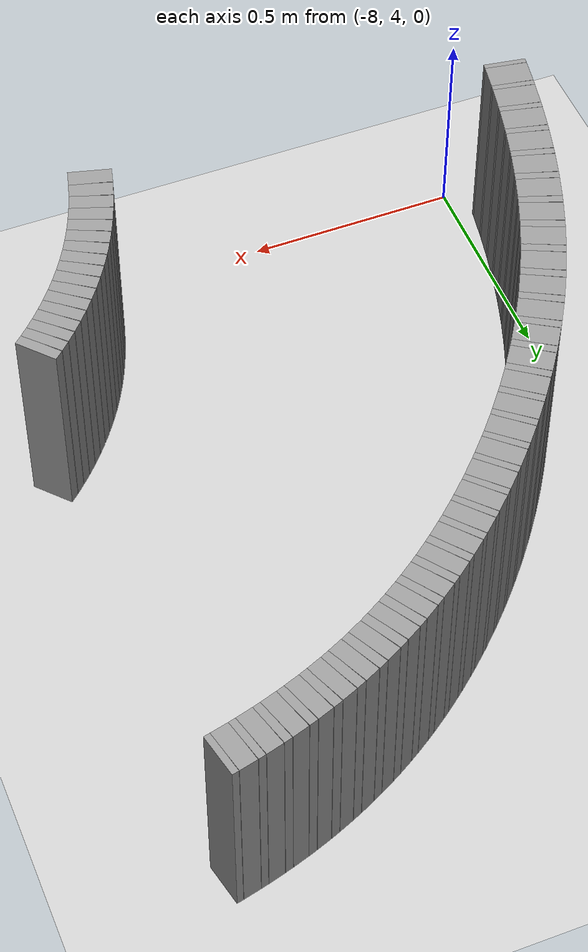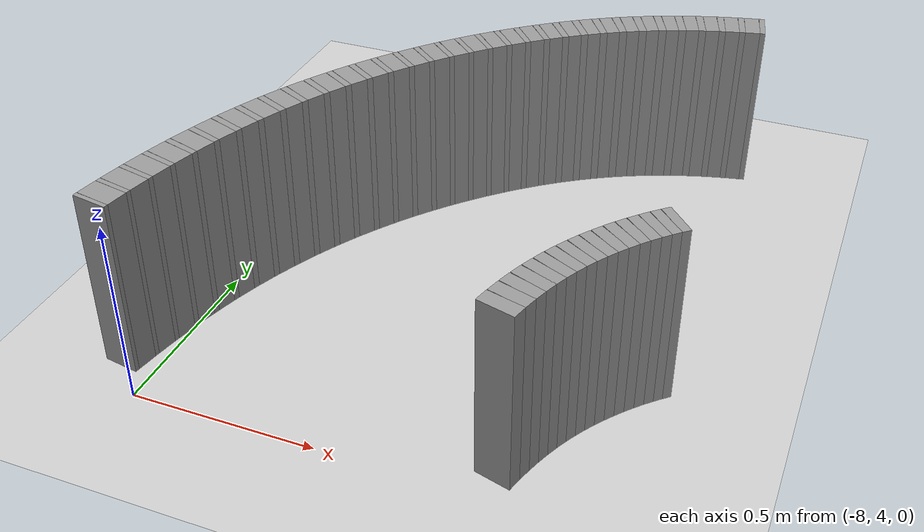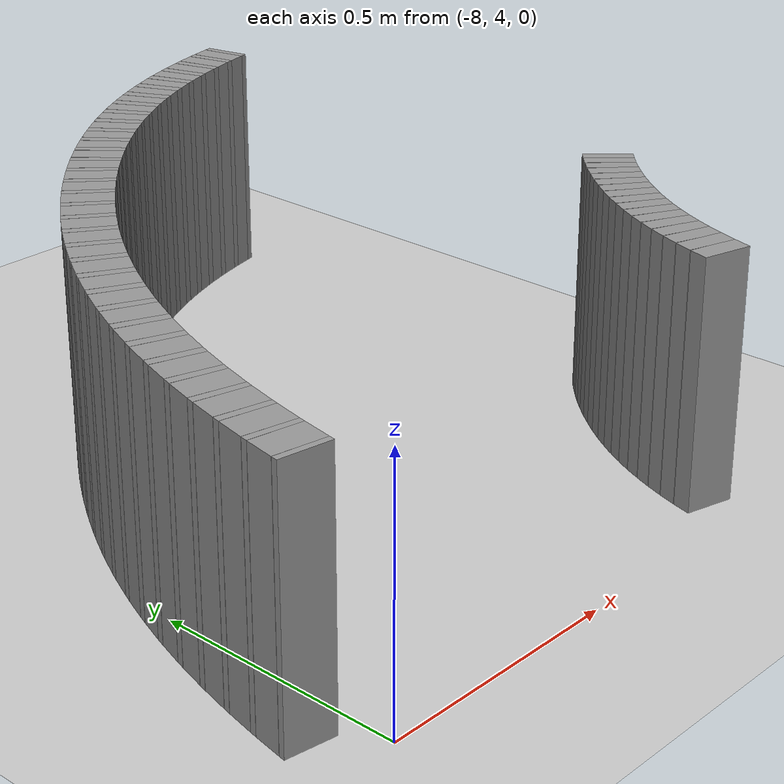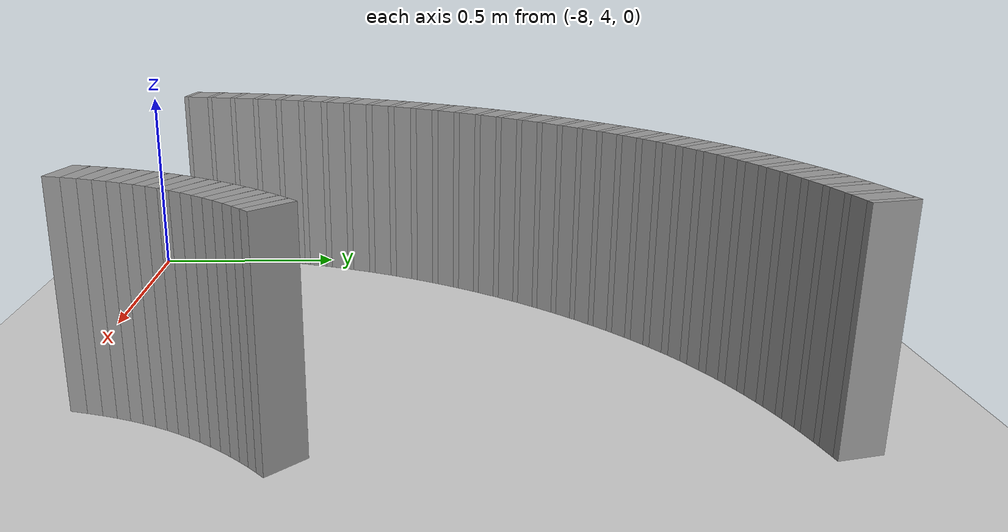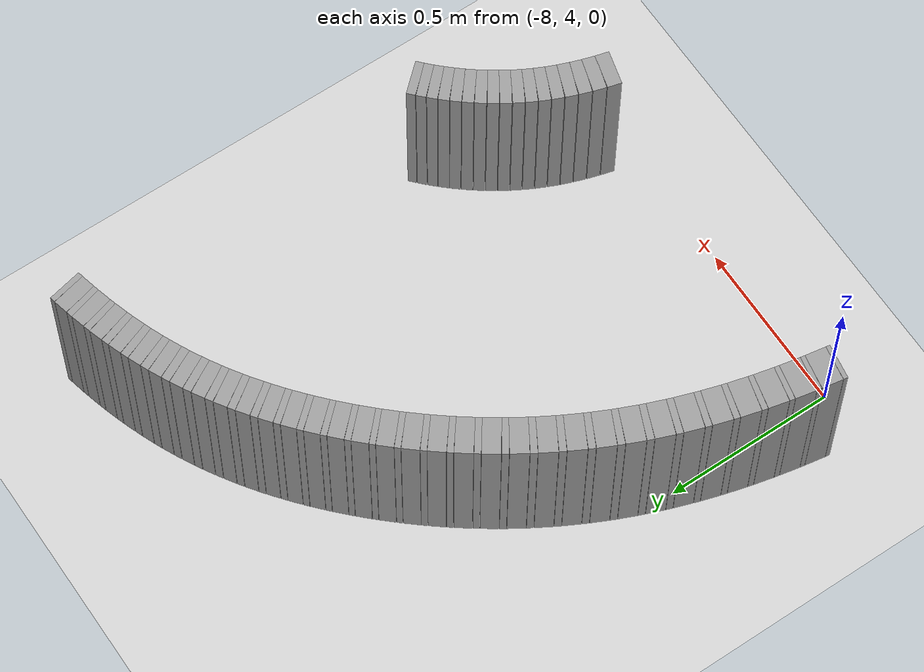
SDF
<sdf version="1.6">
 <world name="default">
  <include><uri>model://ground_plane</uri></include>
  <include><uri>model://sun</uri></include>
  <model name="wall_650_outward">
   <static>true</static>
   <link name="link">
    <collision name="collision">
     <geometry><box><size>0.01256194484242788 0.1 0.5</size></box></geometry>
    </collision>
    <visual name="visual">
     <geometry><box><size>0.01256194484242788 0.1 0.5</size></box></geometry>
     <material>
      <script><uri>file://media/materials/scripts/gazebo.material</uri><name>Gazebo/Gray</name></script>
     </material>
    </visual>
   </link>
   <pose>-8.091727686925314 4.089160399451194 0.25 0 0 1.4112768337027577</pose>
  </model>
  <model name="wall_651_outward">
   <static>true</static>
   <link name="link">
    <collision name="collision">
     <geometry><box><size>0.06001948493624536 0.1 0.5</size></box></geometry>
    </collision>
    <visual name="visual">
     <geometry><box><size>0.06001948493624536 0.1 0.5</size></box></geometry>
     <material>
      <script><uri>file://media/materials/scripts/gazebo.material</uri><name>Gazebo/Gray</name></script>
     </material>
    </visual>
   </link>
   <pose>-8.08559131283684 4.1249281384740755 0.25 0 0 1.398714558452531</pose>
  </model>
  <model name="wall_652_outward">
   <static>true</static>
   <link name="link">
    <collision name="collision">
     <geometry><box><size>0.013774546130411203 0.1 0.5</size></box></geometry>
    </collision>
    <visual name="visual">
     <geometry><box><size>0.013774546130411203 0.1 0.5</size></box></geometry>
     <material>
      <script><uri>file://media/materials/scripts/gazebo.material</uri><name>Gazebo/Gray</name></script>
     </material>
    </visual>
   </link>
   <pose>-8.079179942868517 4.161263312513245 0.25 0 0 1.3849395766922041</pose>
  </model>
  <model name="wall_653_outward">
   <static>true</static>
   <link name="link">
    <collision name="collision">
     <geometry><box><size>0.05897016703481662 0.1 0.5</size></box></geometry>
    </collision>
    <visual name="visual">
     <geometry><box><size>0.05897016703481662 0.1 0.5</size></box></geometry>
     <material>
      <script><uri>file://media/materials/scripts/gazebo.material</uri><name>Gazebo/Gray</name></script>
     </material>
    </visual>
   </link>
   <pose>-8.072060113901571 4.196931475159513 0.25 0 0 1.371164594931829</pose>
  </model>
  <model name="wall_654_outward">
   <static>true</static>
   <link name="link">
    <collision name="collision">
     <geometry><box><size>0.01499664251365926 0.1 0.5</size></box></geometry>
    </collision>
    <visual name="visual">
     <geometry><box><size>0.01499664251365926 0.1 0.5</size></box></geometry>
     <material>
      <script><uri>file://media/materials/scripts/gazebo.material</uri><name>Gazebo/Gray</name></script>
     </material>
    </visual>
   </link>
   <pose>-8.064615945305547 4.233157251302174 0.25 0 0 1.356167390238853</pose>
  </model>
  <model name="wall_655_outward">
   <static>true</static>
   <link name="link">
    <collision name="collision">
     <geometry><box><size>0.05795165395323841 0.1 0.5</size></box></geometry>
    </collision>
    <visual name="visual">
     <geometry><box><size>0.05795165395323841 0.1 0.5</size></box></geometry>
     <material>
      <script><uri>file://media/materials/scripts/gazebo.material</uri><name>Gazebo/Gray</name></script>
     </material>
    </visual>
   </link>
   <pose>-8.056423626934961 4.268698783942757 0.25 0 0 1.3411701855459837</pose>
  </model>
  <model name="wall_656_outward">
   <static>true</static>
   <link name="link">
    <collision name="collision">
     <geometry><box><size>0.01617267637890693 0.1 0.5</size></box></geometry>
    </collision>
    <visual name="visual">
     <geometry><box><size>0.01617267637890693 0.1 0.5</size></box></geometry>
     <material>
      <script><uri>file://media/materials/scripts/gazebo.material</uri><name>Gazebo/Gray</name></script>
     </material>
    </visual>
   </link>
   <pose>-8.047860673730643 4.304757328430645 0.25 0 0 1.3249968040754891</pose>
  </model>
  <model name="wall_657_outward">
   <static>true</static>
   <link name="link">
    <collision name="collision">
     <geometry><box><size>0.056972373629810315 0.1 0.5</size></box></geometry>
    </collision>
    <visual name="visual">
     <geometry><box><size>0.056972373629810315 0.1 0.5</size></box></geometry>
     <material>
      <script><uri>file://media/materials/scripts/gazebo.material</uri><name>Gazebo/Gray</name></script>
     </material>
    </visual>
   </link>
   <pose>-8.038515467786535 4.3401148800723135 0.25 0 0 1.3088234226048914</pose>
  </model>
  <model name="wall_658_outward">
   <static>true</static>
   <link name="link">
    <collision name="collision">
     <geometry><box><size>0.017260384143290532 0.1 0.5</size></box></geometry>
    </collision>
    <visual name="visual">
     <geometry><box><size>0.017260384143290532 0.1 0.5</size></box></geometry>
     <material>
      <script><uri>file://media/materials/scripts/gazebo.material</uri><name>Gazebo/Gray</name></script>
     </material>
    </visual>
   </link>
   <pose>-8.028759276269906 4.375925061055437 0.25 0 0 1.2915621813086473</pose>
  </model>
  <model name="wall_659_outward">
   <static>true</static>
   <link name="link">
    <collision name="collision">
     <geometry><box><size>0.05604223019981629 0.1 0.5</size></box></geometry>
    </collision>
    <visual name="visual">
     <geometry><box><size>0.05604223019981629 0.1 0.5</size></box></geometry>
     <material>
      <script><uri>file://media/materials/scripts/gazebo.material</uri><name>Gazebo/Gray</name></script>
     </material>
    </visual>
   </link>
   <pose>-8.018193688718513 4.411019428498409 0.25 0 0 1.274300940012337</pose>
  </model>
  <model name="wall_660_outward">
   <static>true</static>
   <link name="link">
    <collision name="collision">
     <geometry><box><size>0.018223972745699434 0.1 0.5</size></box></geometry>
    </collision>
    <visual name="visual">
     <geometry><box><size>0.018223972745699434 0.1 0.5</size></box></geometry>
     <material>
      <script><uri>file://media/materials/scripts/gazebo.material</uri><name>Gazebo/Gray</name></script>
     </material>
    </visual>
   </link>
   <pose>-8.007186130001742 4.446482311506424 0.25 0 0 1.2560759583788716</pose>
  </model>
  <model name="wall_661_outward">
   <static>true</static>
   <link name="link">
    <collision name="collision">
     <geometry><box><size>0.05516772634526511 0.1 0.5</size></box></geometry>
    </collision>
    <visual name="visual">
     <geometry><box><size>0.05516772634526511 0.1 0.5</size></box></geometry>
     <material>
      <script><uri>file://media/materials/scripts/gazebo.material</uri><name>Gazebo/Gray</name></script>
     </material>
    </visual>
   </link>
   <pose>-7.995350329211144 4.481215807040182 0.25 0 0 1.2378509767454864</pose>
  </model>
  <model name="wall_662_outward">
   <static>true</static>
   <link name="link">
    <collision name="collision">
     <geometry><box><size>0.018993012829250158 0.1 0.5</size></box></geometry>
    </collision>
    <visual name="visual">
     <geometry><box><size>0.018993012829250158 0.1 0.5</size></box></geometry>
     <material>
      <script><uri>file://media/materials/scripts/gazebo.material</uri><name>Gazebo/Gray</name></script>
     </material>
    </visual>
   </link>
   <pose>-7.9830615221967385 4.516199296400662 0.25 0 0 1.2188568218248899</pose>
  </model>
  <model name="wall_663_outward">
   <static>true</static>
   <link name="link">
    <collision name="collision">
     <geometry><box><size>0.05435407611663092 0.1 0.5</size></box></geometry>
    </collision>
    <visual name="visual">
     <geometry><box><size>0.05435407611663092 0.1 0.5</size></box></geometry>
     <material>
      <script><uri>file://media/materials/scripts/gazebo.material</uri><name>Gazebo/Gray</name></script>
     </material>
    </visual>
   </link>
   <pose>-7.969936606200706 4.550442431990792 0.25 0 0 1.1998626669042831</pose>
  </model>
  <model name="wall_664_outward">
   <static>true</static>
   <link name="link">
    <collision name="collision">
     <geometry><box><size>0.019527910755009453 0.1 0.5</size></box></geometry>
    </collision>
    <visual name="visual">
     <geometry><box><size>0.019527910755009453 0.1 0.5</size></box></geometry>
     <material>
      <script><uri>file://media/materials/scripts/gazebo.material</uri><name>Gazebo/Gray</name></script>
     </material>
    </visual>
   </link>
   <pose>-7.9563689952821015 4.584800192830242 0.25 0 0 1.1803335148095842</pose>
  </model>
  <model name="wall_665_outward">
   <static>true</static>
   <link name="link">
    <collision name="collision">
     <geometry><box><size>0.053596275453212286 0.1 0.5</size></box></geometry>
    </collision>
    <visual name="visual">
     <geometry><box><size>0.053596275453212286 0.1 0.5</size></box></geometry>
     <material>
      <script><uri>file://media/materials/scripts/gazebo.material</uri><name>Gazebo/Gray</name></script>
     </material>
    </visual>
   </link>
   <pose>-7.941970883240309 4.618406460588268 0.25 0 0 1.1608043627149431</pose>
  </model>
  <model name="wall_666_outward">
   <static>true</static>
   <link name="link">
    <collision name="collision">
     <geometry><box><size>0.019820101703754818 0.1 0.5</size></box></geometry>
    </collision>
    <visual name="visual">
     <geometry><box><size>0.019820101703754818 0.1 0.5</size></box></geometry>
     <material>
      <script><uri>file://media/materials/scripts/gazebo.material</uri><name>Gazebo/Gray</name></script>
     </material>
    </visual>
   </link>
   <pose>-7.9271595634919 4.6519923442278035 0.25 0 0 1.14098296310542</pose>
  </model>
  <model name="wall_667_outward">
   <static>true</static>
   <link name="link">
    <collision name="collision">
     <geometry><box><size>0.052886768655516114 0.1 0.5</size></box></geometry>
    </collision>
    <visual name="visual">
     <geometry><box><size>0.052886768655516114 0.1 0.5</size></box></geometry>
     <material>
      <script><uri>file://media/materials/scripts/gazebo.material</uri><name>Gazebo/Gray</name></script>
     </material>
    </visual>
   </link>
   <pose>-7.911536770496038 4.6848160800510446 0.25 0 0 1.1211615634958536</pose>
  </model>
  <model name="wall_668_outward">
   <static>true</static>
   <link name="link">
    <collision name="collision">
     <geometry><box><size>0.019839344339938676 0.1 0.5</size></box></geometry>
    </collision>
    <visual name="visual">
     <geometry><box><size>0.019839344339938676 0.1 0.5</size></box></geometry>
     <material>
      <script><uri>file://media/materials/scripts/gazebo.material</uri><name>Gazebo/Gray</name></script>
     </material>
    </visual>
   </link>
   <pose>-7.895555663729116 4.717477568829263 0.25 0 0 1.1013209174657101</pose>
  </model>
  <model name="wall_669_outward">
   <static>true</static>
   <link name="link">
    <collision name="collision">
     <geometry><box><size>0.05220754961263289 0.1 0.5</size></box></geometry>
    </collision>
    <visual name="visual">
     <geometry><box><size>0.05220754961263289 0.1 0.5</size></box></geometry>
     <material>
      <script><uri>file://media/materials/scripts/gazebo.material</uri><name>Gazebo/Gray</name></script>
     </material>
    </visual>
   </link>
   <pose>-7.878798463811414 4.749364604657554 0.25 0 0 1.0814802714356144</pose>
  </model>
  <model name="wall_670_outward">
   <static>true</static>
   <link name="link">
    <collision name="collision">
     <geometry><box><size>0.019624674930287314 0.1 0.5</size></box></geometry>
    </collision>
    <visual name="visual">
     <geometry><box><size>0.019624674930287314 0.1 0.5</size></box></geometry>
     <material>
      <script><uri>file://media/materials/scripts/gazebo.material</uri><name>Gazebo/Gray</name></script>
     </material>
    </visual>
   </link>
   <pose>-7.861748010473297 4.7809739467240435 0.25 0 0 1.0618543366187796</pose>
  </model>
  <model name="wall_671_outward">
   <static>true</static>
   <link name="link">
    <collision name="collision">
     <geometry><box><size>0.05153622349743499 0.1 0.5</size></box></geometry>
    </collision>
    <visual name="visual">
     <geometry><box><size>0.05153622349743499 0.1 0.5</size></box></geometry>
     <material>
      <script><uri>file://media/materials/scripts/gazebo.material</uri><name>Gazebo/Gray</name></script>
     </material>
    </visual>
   </link>
   <pose>-7.843972126614994 4.81179421492739 0.25 0 0 1.0422284018019272</pose>
  </model>
  <model name="wall_672_outward">
   <static>true</static>
   <link name="link">
    <collision name="collision">
     <geometry><box><size>0.019200844043526337 0.1 0.5</size></box></geometry>
    </collision>
    <visual name="visual">
     <geometry><box><size>0.019200844043526337 0.1 0.5</size></box></geometry>
     <material>
      <script><uri>file://media/materials/scripts/gazebo.material</uri><name>Gazebo/Gray</name></script>
     </material>
    </visual>
   </link>
   <pose>-7.8259775860701115 4.8422415215293375 0.25 0 0 1.0230263777590671</pose>
  </model>
  <model name="wall_673_outward">
   <static>true</static>
   <link name="link">
    <collision name="collision">
     <geometry><box><size>0.05084547749584585 0.1 0.5</size></box></geometry>
    </collision>
    <visual name="visual">
     <geometry><box><size>0.05084547749584585 0.1 0.5</size></box></geometry>
     <material>
      <script><uri>file://media/materials/scripts/gazebo.material</uri><name>Gazebo/Gray</name></script>
     </material>
    </visual>
   </link>
   <pose>-7.807323780971711 4.871882158429386 0.25 0 0 1.0038243537161604</pose>
  </model>
  <model name="wall_674_outward">
   <static>true</static>
   <link name="link">
    <collision name="collision">
     <geometry><box><size>0.018652733343393953 0.1 0.5</size></box></geometry>
    </collision>
    <visual name="visual">
     <geometry><box><size>0.018652733343393953 0.1 0.5</size></box></geometry>
     <material>
      <script><uri>file://media/materials/scripts/gazebo.material</uri><name>Gazebo/Gray</name></script>
     </material>
    </visual>
   </link>
   <pose>-7.788514850603604 4.901099310330021 0.25 0 0 0.9851705385796858</pose>
  </model>
  <model name="wall_675_outward">
   <static>true</static>
   <link name="link">
    <collision name="collision">
     <geometry><box><size>0.0501054546073283 0.1 0.5</size></box></geometry>
    </collision>
    <visual name="visual">
     <geometry><box><size>0.0501054546073283 0.1 0.5</size></box></geometry>
     <material>
      <script><uri>file://media/materials/scripts/gazebo.material</uri><name>Gazebo/Gray</name></script>
     </material>
    </visual>
   </link>
   <pose>-7.76912577881288 4.9294877709737035 0.25 0 0 0.9665167234432128</pose>
  </model>
  <model name="wall_676_outward">
   <static>true</static>
   <link name="link">
    <collision name="collision">
     <geometry><box><size>0.01801990655456166 0.1 0.5</size></box></geometry>
    </collision>
    <visual name="visual">
     <geometry><box><size>0.01801990655456166 0.1 0.5</size></box></geometry>
     <material>
      <script><uri>file://media/materials/scripts/gazebo.material</uri><name>Gazebo/Gray</name></script>
     </material>
    </visual>
   </link>
   <pose>-7.749639630492408 4.957424895550961 0.25 0 0 0.9484958415176699</pose>
  </model>
  <model name="wall_677_outward">
   <static>true</static>
   <link name="link">
    <collision name="collision">
     <geometry><box><size>0.04929131693961531 0.1 0.5</size></box></geometry>
    </collision>
    <visual name="visual">
     <geometry><box><size>0.04929131693961531 0.1 0.5</size></box></geometry>
     <material>
      <script><uri>file://media/materials/scripts/gazebo.material</uri><name>Gazebo/Gray</name></script>
     </material>
    </visual>
   </link>
   <pose>-7.72966304826522 4.9845092868732035 0.25 0 0 0.9304749595921694</pose>
  </model>
  <model name="wall_678_outward">
   <static>true</static>
   <link name="link">
    <collision name="collision">
     <geometry><box><size>0.017409793855334817 0.1 0.5</size></box></geometry>
    </collision>
    <visual name="visual">
     <geometry><box><size>0.017409793855334817 0.1 0.5</size></box></geometry>
     <material>
      <script><uri>file://media/materials/scripts/gazebo.material</uri><name>Gazebo/Gray</name></script>
     </material>
    </visual>
   </link>
   <pose>-7.709616912310304 5.011161621611993 0.25 0 0 0.9130642861294155</pose>
  </model>
  <model name="wall_679_outward">
   <static>true</static>
   <link name="link">
    <collision name="collision">
     <geometry><box><size>0.048382217569400955 0.1 0.5</size></box></geometry>
    </collision>
    <visual name="visual">
     <geometry><box><size>0.048382217569400955 0.1 0.5</size></box></geometry>
     <material>
      <script><uri>file://media/materials/scripts/gazebo.material</uri><name>Gazebo/Gray</name></script>
     </material>
    </visual>
   </link>
   <pose>-7.689175749189795 5.0369345184213055 0.25 0 0 0.8956536126666832</pose>
  </model>
  <model name="wall_680_outward">
   <static>true</static>
   <link name="link">
    <collision name="collision">
     <geometry><box><size>0.01688103706267177 0.1 0.5</size></box></geometry>
    </collision>
    <visual name="visual">
     <geometry><box><size>0.01688103706267177 0.1 0.5</size></box></geometry>
     <material>
      <script><uri>file://media/materials/scripts/gazebo.material</uri><name>Gazebo/Gray</name></script>
     </material>
    </visual>
   </link>
   <pose>-7.668670222924128 5.0623173532332855 0.25 0 0 0.8787717737379733</pose>
  </model>
  <model name="wall_681_outward">
   <static>true</static>
   <link name="link">
    <collision name="collision">
     <geometry><box><size>0.04736761969955772 0.1 0.5</size></box></geometry>
    </collision>
    <visual name="visual">
     <geometry><box><size>0.04736761969955772 0.1 0.5</size></box></geometry>
     <material>
      <script><uri>file://media/materials/scripts/gazebo.material</uri><name>Gazebo/Gray</name></script>
     </material>
    </visual>
   </link>
   <pose>-7.647866095119317 5.0867939496008 0.25 0 0 0.8618899348092709</pose>
  </model>
  <model name="wall_682_outward">
   <static>true</static>
   <link name="link">
    <collision name="collision">
     <geometry><box><size>0.01651473022385015 0.1 0.5</size></box></geometry>
    </collision>
    <visual name="visual">
     <geometry><box><size>0.01651473022385015 0.1 0.5</size></box></geometry>
     <material>
      <script><uri>file://media/materials/scripts/gazebo.material</uri><name>Gazebo/Gray</name></script>
     </material>
    </visual>
   </link>
   <pose>-7.626969481019536 5.1109500427358325 0.25 0 0 0.8453744537988584</pose>
  </model>
  <model name="wall_683_outward">
   <static>true</static>
   <link name="link">
    <collision name="collision">
     <geometry><box><size>0.046247340619404075 0.1 0.5</size></box></geometry>
    </collision>
    <visual name="visual">
     <geometry><box><size>0.046247340619404075 0.1 0.5</size></box></geometry>
     <material>
      <script><uri>file://media/materials/scripts/gazebo.material</uri><name>Gazebo/Gray</name></script>
     </material>
    </visual>
   </link>
   <pose>-7.605866058057934 5.13417422934061 0.25 0 0 0.8288589727883895</pose>
  </model>
  <model name="wall_684_outward">
   <static>true</static>
   <link name="link">
    <collision name="collision">
     <geometry><box><size>0.016360262513821902 0.1 0.5</size></box></geometry>
    </collision>
    <visual name="visual">
     <geometry><box><size>0.016360262513821902 0.1 0.5</size></box></geometry>
     <material>
      <script><uri>file://media/materials/scripts/gazebo.material</uri><name>Gazebo/Gray</name></script>
     </material>
    </visual>
   </link>
   <pose>-7.584615623363108 5.15715892828624 0.25 0 0 0.8124979803602391</pose>
  </model>
  <model name="wall_685_outward">
   <static>true</static>
   <link name="link">
    <collision name="collision">
     <geometry><box><size>0.0450366843606043 0.1 0.5</size></box></geometry>
    </collision>
    <visual name="visual">
     <geometry><box><size>0.0450366843606043 0.1 0.5</size></box></geometry>
     <material>
      <script><uri>file://media/materials/scripts/gazebo.material</uri><name>Gazebo/Gray</name></script>
     </material>
    </visual>
   </link>
   <pose>-7.563239288519174 5.179190706999625 0.25 0 0 0.7961369879321589</pose>
  </model>
  <model name="wall_686_outward">
   <static>true</static>
   <link name="link">
    <collision name="collision">
     <geometry><box><size>0.016494753077974968 0.1 0.5</size></box></geometry>
    </collision>
    <visual name="visual">
     <geometry><box><size>0.016494753077974968 0.1 0.5</size></box></geometry>
     <material>
      <script><uri>file://media/materials/scripts/gazebo.material</uri><name>Gazebo/Gray</name></script>
     </material>
    </visual>
   </link>
   <pose>-7.5416230731222225 5.201081758765602 0.25 0 0 0.7796414867891209</pose>
  </model>
  <model name="wall_687_outward">
   <static>true</static>
   <link name="link">
    <collision name="collision">
     <geometry><box><size>0.04376248350759975 0.1 0.5</size></box></geometry>
    </collision>
    <visual name="visual">
     <geometry><box><size>0.04376248350759975 0.1 0.5</size></box></geometry>
     <material>
      <script><uri>file://media/materials/scripts/gazebo.material</uri><name>Gazebo/Gray</name></script>
     </material>
    </visual>
   </link>
   <pose>-7.519945012862179 5.222004144874456 0.25 0 0 0.763145985646044</pose>
  </model>
  <model name="wall_688_outward">
   <static>true</static>
   <link name="link">
    <collision name="collision">
     <geometry><box><size>0.01691997400560662 0.1 0.5</size></box></geometry>
    </collision>
    <visual name="visual">
     <geometry><box><size>0.01691997400560662 0.1 0.5</size></box></geometry>
     <material>
      <script><uri>file://media/materials/scripts/gazebo.material</uri><name>Gazebo/Gray</name></script>
     </material>
    </visual>
   </link>
   <pose>-7.49792040119907 5.242871670937844 0.25 0 0 0.7462252042125134</pose>
  </model>
  <model name="wall_689_outward">
   <static>true</static>
   <link name="link">
    <collision name="collision">
     <geometry><box><size>0.04246417118047611 0.1 0.5</size></box></geometry>
    </collision>
    <visual name="visual">
     <geometry><box><size>0.04246417118047611 0.1 0.5</size></box></geometry>
     <material>
      <script><uri>file://media/materials/scripts/gazebo.material</uri><name>Gazebo/Gray</name></script>
     </material>
    </visual>
   </link>
   <pose>-7.475877147523298 5.262762943271781 0.25 0 0 0.7293044227789286</pose>
  </model>
  <model name="wall_690_outward">
   <static>true</static>
   <link name="link">
    <collision name="collision">
     <geometry><box><size>0.01764973948430088 0.1 0.5</size></box></geometry>
    </collision>
    <visual name="visual">
     <geometry><box><size>0.01764973948430088 0.1 0.5</size></box></geometry>
     <material>
      <script><uri>file://media/materials/scripts/gazebo.material</uri><name>Gazebo/Gray</name></script>
     </material>
    </visual>
   </link>
   <pose>-7.453362773377151 5.282674375860751 0.25 0 0 0.7116537668113676</pose>
  </model>
  <model name="wall_691_outward">
   <static>true</static>
   <link name="link">
    <collision name="collision">
     <geometry><box><size>0.04119205205810029 0.1 0.5</size></box></geometry>
    </collision>
    <visual name="visual">
     <geometry><box><size>0.04119205205810029 0.1 0.5</size></box></geometry>
     <material>
      <script><uri>file://media/materials/scripts/gazebo.material</uri><name>Gazebo/Gray</name></script>
     </material>
    </visual>
   </link>
   <pose>-7.43084785625755 5.301611402841422 0.25 0 0 0.6940031108438147</pose>
  </model>
  <model name="wall_692_outward">
   <static>true</static>
   <link name="link">
    <collision name="collision">
     <geometry><box><size>0.0186604227991257 0.1 0.5</size></box></geometry>
    </collision>
    <visual name="visual">
     <geometry><box><size>0.0186604227991257 0.1 0.5</size></box></geometry>
     <material>
      <script><uri>file://media/materials/scripts/gazebo.material</uri><name>Gazebo/Gray</name></script>
     </material>
    </visual>
   </link>
   <pose>-7.407733692952473 5.320617933860465 0.25 0 0 0.6753416049130408</pose>
  </model>
  <model name="wall_693_outward">
   <static>true</static>
   <link name="link">
    <collision name="collision">
     <geometry><box><size>0.040003211295768296 0.1 0.5</size></box></geometry>
    </collision>
    <visual name="visual">
     <geometry><box><size>0.040003211295768296 0.1 0.5</size></box></geometry>
     <material>
      <script><uri>file://media/materials/scripts/gazebo.material</uri><name>Gazebo/Gray</name></script>
     </material>
    </visual>
   </link>
   <pose>-7.38460978524359 5.338661641766156 0.25 0 0 0.6566800989822515</pose>
  </model>
  <model name="wall_694_outward">
   <static>true</static>
   <link name="link">
    <collision name="collision">
     <geometry><box><size>0.0198542190027631 0.1 0.5</size></box></geometry>
    </collision>
    <visual name="visual">
     <geometry><box><size>0.0198542190027631 0.1 0.5</size></box></geometry>
     <material>
      <script><uri>file://media/materials/scripts/gazebo.material</uri><name>Gazebo/Gray</name></script>
     </material>
    </visual>
   </link>
   <pose>-7.360786768794716 5.356775548037755 0.25 0 0 0.6368245753589048</pose>
  </model>
  <model name="wall_695_outward">
   <static>true</static>
   <link name="link">
    <collision name="collision">
     <geometry><box><size>0.03895856670578251 0.1 0.5</size></box></geometry>
    </collision>
    <visual name="visual">
     <geometry><box><size>0.03895856670578251 0.1 0.5</size></box></geometry>
     <material>
      <script><uri>file://media/materials/scripts/gazebo.material</uri><name>Gazebo/Gray</name></script>
     </material>
    </visual>
   </link>
   <pose>-7.336917490365201 5.373948703098601 0.25 0 0 0.6169690517355806</pose>
  </model>
  <model name="wall_696_outward">
   <static>true</static>
   <link name="link">
    <collision name="collision">
     <geometry><box><size>0.0211067531855032 0.1 0.5</size></box></geometry>
    </collision>
    <visual name="visual">
     <geometry><box><size>0.0211067531855032 0.1 0.5</size></box></geometry>
     <material>
      <script><uri>file://media/materials/scripts/gazebo.material</uri><name>Gazebo/Gray</name></script>
     </material>
    </visual>
   </link>
   <pose>-7.312294821146315 5.391141528123789 0.25 0 0 0.5958607310768799</pose>
  </model>
  <model name="wall_697_outward">
   <static>true</static>
   <link name="link">
    <collision name="collision">
     <geometry><box><size>0.03811692766663558 0.1 0.5</size></box></geometry>
    </collision>
    <visual name="visual">
     <geometry><box><size>0.03811692766663558 0.1 0.5</size></box></geometry>
     <material>
      <script><uri>file://media/materials/scripts/gazebo.material</uri><name>Gazebo/Gray</name></script>
     </material>
    </visual>
   </link>
   <pose>-7.287563871012844 5.407425003981453 0.25 0 0 0.5747524104181745</pose>
  </model>
  <model name="wall_698_outward">
   <static>true</static>
   <link name="link">
    <collision name="collision">
     <geometry><box><size>0.022256602380540294 0.1 0.5</size></box></geometry>
    </collision>
    <visual name="visual">
     <geometry><box><size>0.022256602380540294 0.1 0.5</size></box></geometry>
     <material>
      <script><uri>file://media/materials/scripts/gazebo.material</uri><name>Gazebo/Gray</name></script>
     </material>
    </visual>
   </link>
   <pose>-7.2620949754921575 5.423625962941749 0.25 0 0 0.5524939701363796</pose>
  </model>
  <model name="wall_699_outward">
   <static>true</static>
   <link name="link">
    <collision name="collision">
     <geometry><box><size>0.037533279459258016 0.1 0.5</size></box></geometry>
    </collision>
    <visual name="visual">
     <geometry><box><size>0.037533279459258016 0.1 0.5</size></box></geometry>
     <material>
      <script><uri>file://media/materials/scripts/gazebo.material</uri><name>Gazebo/Gray</name></script>
     </material>
    </visual>
   </link>
   <pose>-7.2364326073173615 5.438957201927076 0.25 0 0 0.5302355298545666</pose>
  </model>
  <model name="wall_700_outward">
   <static>true</static>
   <link name="link">
    <collision name="collision">
     <geometry><box><size>0.02309365423683175 0.1 0.5</size></box></geometry>
    </collision>
    <visual name="visual">
     <geometry><box><size>0.02309365423683175 0.1 0.5</size></box></geometry>
     <material>
      <script><uri>file://media/materials/scripts/gazebo.material</uri><name>Gazebo/Gray</name></script>
     </material>
    </visual>
   </link>
   <pose>-7.210149341591186 5.454056229462875 0.25 0 0 0.5071398224190725</pose>
  </model>
  <model name="wall_701_outward">
   <static>true</static>
   <link name="link">
    <collision name="collision">
     <geometry><box><size>0.03725169587607303 0.1 0.5</size></box></geometry>
    </collision>
    <visual name="visual">
     <geometry><box><size>0.03725169587607303 0.1 0.5</size></box></geometry>
     <material>
      <script><uri>file://media/materials/scripts/gazebo.material</uri><name>Gazebo/Gray</name></script>
     </material>
    </visual>
   </link>
   <pose>-7.183569716354732 5.468332052622751 0.25 0 0 0.48404411498355365</pose>
  </model>
  <model name="wall_702_outward">
   <static>true</static>
   <link name="link">
    <collision name="collision">
     <geometry><box><size>0.02345672229169933 0.1 0.5</size></box></geometry>
    </collision>
    <visual name="visual">
     <geometry><box><size>0.02345672229169933 0.1 0.5</size></box></geometry>
     <material>
      <script><uri>file://media/materials/scripts/gazebo.material</uri><name>Gazebo/Gray</name></script>
     </material>
    </visual>
   </link>
   <pose>-7.15657742408176 5.482212757034576 0.25 0 0 0.4605852411079521</pose>
  </model>
  <model name="wall_703_outward">
   <static>true</static>
   <link name="link">
    <collision name="collision">
     <geometry><box><size>0.03730313383380174 0.1 0.5</size></box></geometry>
    </collision>
    <visual name="visual">
     <geometry><box><size>0.03730313383380174 0.1 0.5</size></box></geometry>
     <material>
      <script><uri>file://media/materials/scripts/gazebo.material</uri><name>Gazebo/Gray</name></script>
     </material>
    </visual>
   </link>
   <pose>-7.129173449926671 5.495321603346266 0.25 0 0 0.4371263672324074</pose>
  </model>
  <model name="wall_704_outward">
   <static>true</static>
   <link name="link">
    <collision name="collision">
     <geometry><box><size>0.023247739690223247 0.1 0.5</size></box></geometry>
    </collision>
    <visual name="visual">
     <geometry><box><size>0.023247739690223247 0.1 0.5</size></box></geometry>
     <material>
      <script><uri>file://media/materials/scripts/gazebo.material</uri><name>Gazebo/Gray</name></script>
     </material>
    </visual>
   </link>
   <pose>-7.101633202485059 5.507892190172456 0.25 0 0 0.4138765329639022</pose>
  </model>
  <model name="wall_705_outward">
   <static>true</static>
   <link name="link">
    <collision name="collision">
     <geometry><box><size>0.03770110319357904 0.1 0.5</size></box></geometry>
    </collision>
    <visual name="visual">
     <geometry><box><size>0.03770110319357904 0.1 0.5</size></box></geometry>
     <material>
      <script><uri>file://media/materials/scripts/gazebo.material</uri><name>Gazebo/Gray</name></script>
     </material>
    </visual>
   </link>
   <pose>-7.073560199793688 5.5197445504035 0.25 0 0 0.3906266986953992</pose>
  </model>
  <model name="wall_706_outward">
   <static>true</static>
   <link name="link">
    <collision name="collision">
     <geometry><box><size>0.022440333247684942 0.1 0.5</size></box></geometry>
    </collision>
    <visual name="visual">
     <geometry><box><size>0.022440333247684942 0.1 0.5</size></box></geometry>
     <material>
      <script><uri>file://media/materials/scripts/gazebo.material</uri><name>Gazebo/Gray</name></script>
     </material>
    </visual>
   </link>
   <pose>-7.045661431482798 5.5309606236776405 0.25 0 0 0.3681844816464584</pose>
  </model>
  <model name="wall_707_outward">
   <static>true</static>
   <link name="link">
    <collision name="collision">
     <geometry><box><size>0.038442651301172436 0.1 0.5</size></box></geometry>
    </collision>
    <visual name="visual">
     <geometry><box><size>0.038442651301172436 0.1 0.5</size></box></geometry>
     <material>
      <script><uri>file://media/materials/scripts/gazebo.material</uri><name>Gazebo/Gray</name></script>
     </material>
    </visual>
   </link>
   <pose>-7.017109326706549 5.54151302379365 0.25 0 0 0.34574226459746693</pose>
  </model>
  <model name="wall_708_outward">
   <static>true</static>
   <link name="link">
    <collision name="collision">
     <geometry><box><size>0.021135214493801357 0.1 0.5</size></box></geometry>
    </collision>
    <visual name="visual">
     <geometry><box><size>0.021135214493801357 0.1 0.5</size></box></geometry>
     <material>
      <script><uri>file://media/materials/scripts/gazebo.material</uri><name>Gazebo/Gray</name></script>
     </material>
    </visual>
   </link>
   <pose>-6.989009707951764 5.551397415742068 0.25 0 0 0.32460547628010333</pose>
  </model>
  <model name="wall_709_outward">
   <static>true</static>
   <link name="link">
    <collision name="collision">
     <geometry><box><size>0.03950893746822124 0.1 0.5</size></box></geometry>
    </collision>
    <visual name="visual">
     <geometry><box><size>0.03950893746822124 0.1 0.5</size></box></geometry>
     <material>
      <script><uri>file://media/materials/scripts/gazebo.material</uri><name>Gazebo/Gray</name></script>
     </material>
    </visual>
   </link>
   <pose>-6.960142175142904 5.560671065482943 0.25 0 0 0.30346868796274395</pose>
  </model>
  <model name="wall_710_outward">
   <static>true</static>
   <link name="link">
    <collision name="collision">
     <geometry><box><size>0.0194521852751244 0.1 0.5</size></box></geometry>
    </collision>
    <visual name="visual">
     <geometry><box><size>0.0194521852751244 0.1 0.5</size></box></geometry>
     <material>
      <script><uri>file://media/materials/scripts/gazebo.material</uri><name>Gazebo/Gray</name></script>
     </material>
    </visual>
   </link>
   <pose>-6.931953927092206 5.5692997074800825 0.25 0 0 0.2840152757346764</pose>
  </model>
  <model name="wall_711_outward">
   <static>true</static>
   <link name="link">
    <collision name="collision">
     <geometry><box><size>0.040866299384468986 0.1 0.5</size></box></geometry>
    </collision>
    <visual name="visual">
     <geometry><box><size>0.040866299384468986 0.1 0.5</size></box></geometry>
     <material>
      <script><uri>file://media/materials/scripts/gazebo.material</uri><name>Gazebo/Gray</name></script>
     </material>
    </visual>
   </link>
   <pose>-6.902895258303115 5.577368069164287 0.25 0 0 0.2645618635066385</pose>
  </model>
  <model name="wall_712_outward">
   <static>true</static>
   <link name="link">
    <collision name="collision">
     <geometry><box><size>0.01757546327691154 0.1 0.5</size></box></geometry>
    </collision>
    <visual name="visual">
     <geometry><box><size>0.01757546327691154 0.1 0.5</size></box></geometry>
     <material>
      <script><uri>file://media/materials/scripts/gazebo.material</uri><name>Gazebo/Gray</name></script>
     </material>
    </visual>
   </link>
   <pose>-6.874651978373372 5.584859502566475 0.25 0 0 0.24698549526956565</pose>
  </model>
  <model name="wall_713_outward">
   <static>true</static>
   <link name="link">
    <collision name="collision">
     <geometry><box><size>0.0424709425621272 0.1 0.5</size></box></geometry>
    </collision>
    <visual name="visual">
     <geometry><box><size>0.0424709425621272 0.1 0.5</size></box></geometry>
     <material>
      <script><uri>file://media/materials/scripts/gazebo.material</uri><name>Gazebo/Gray</name></script>
     </material>
    </visual>
   </link>
   <pose>-6.845451799133974 5.5918369374624755 0.25 0 0 0.22940912703245736</pose>
  </model>
  <model name="wall_714_outward">
   <static>true</static>
   <link name="link">
    <collision name="collision">
     <geometry><box><size>0.01564265022970387 0.1 0.5</size></box></geometry>
    </collision>
    <visual name="visual">
     <geometry><box><size>0.01564265022970387 0.1 0.5</size></box></geometry>
     <material>
      <script><uri>file://media/materials/scripts/gazebo.material</uri><name>Gazebo/Gray</name></script>
     </material>
    </visual>
   </link>
   <pose>-6.8171293738511665 5.59832515752232 0.25 0 0 0.213765838792588</pose>
  </model>
  <model name="wall_419_inward">
   <static>true</static>
   <link name="link">
    <collision name="collision">
     <geometry><box><size>0.04025349980382149 0.1 0.5</size></box></geometry>
    </collision>
    <visual name="visual">
     <geometry><box><size>0.04025349980382149 0.1 0.5</size></box></geometry>
     <material>
      <script><uri>file://media/materials/scripts/gazebo.material</uri><name>Gazebo/Gray</name></script>
     </material>
    </visual>
   </link>
   <pose>-7.072705020371584 4.08086547569414 0.25 0 0 1.3088234226049118</pose>
  </model>
  <model name="wall_420_inward">
   <static>true</static>
   <link name="link">
    <collision name="collision">
     <geometry><box><size>0.038297252428470346 0.1 0.5</size></box></geometry>
    </collision>
    <visual name="visual">
     <geometry><box><size>0.038297252428470346 0.1 0.5</size></box></geometry>
     <material>
      <script><uri>file://media/materials/scripts/gazebo.material</uri><name>Gazebo/Gray</name></script>
     </material>
    </visual>
   </link>
   <pose>-7.061897800806602 4.118618619934109 0.25 0 0 1.274300940012322</pose>
  </model>
  <model name="wall_421_inward">
   <static>true</static>
   <link name="link">
    <collision name="collision">
     <geometry><box><size>0.036556006752928034 0.1 0.5</size></box></geometry>
    </collision>
    <visual name="visual">
     <geometry><box><size>0.036556006752928034 0.1 0.5</size></box></geometry>
     <material>
      <script><uri>file://media/materials/scripts/gazebo.material</uri><name>Gazebo/Gray</name></script>
     </material>
    </visual>
   </link>
   <pose>-7.0503293765726855 4.154205966092471 0.25 0 0 1.2378509767454922</pose>
  </model>
  <model name="wall_422_inward">
   <static>true</static>
   <link name="link">
    <collision name="collision">
     <geometry><box><size>0.03509003877947628 0.1 0.5</size></box></geometry>
    </collision>
    <visual name="visual">
     <geometry><box><size>0.03509003877947628 0.1 0.5</size></box></geometry>
     <material>
      <script><uri>file://media/materials/scripts/gazebo.material</uri><name>Gazebo/Gray</name></script>
     </material>
    </visual>
   </link>
   <pose>-7.037995792940951 4.187831981944324 0.25 0 0 1.1998626669042718</pose>
  </model>
  <model name="wall_423_inward">
   <static>true</static>
   <link name="link">
    <collision name="collision">
     <geometry><box><size>0.03391845991304599 0.1 0.5</size></box></geometry>
    </collision>
    <visual name="visual">
     <geometry><box><size>0.03391845991304599 0.1 0.5</size></box></geometry>
     <material>
      <script><uri>file://media/materials/scripts/gazebo.material</uri><name>Gazebo/Gray</name></script>
     </material>
    </visual>
   </link>
   <pose>-7.024875991145501 4.219737469775354 0.25 0 0 1.160804362714938</pose>
  </model>
  <model name="wall_424_inward">
   <static>true</static>
   <link name="link">
    <collision name="collision">
     <geometry><box><size>0.03305314577960774 0.1 0.5</size></box></geometry>
    </collision>
    <visual name="visual">
     <geometry><box><size>0.03305314577960774 0.1 0.5</size></box></geometry>
     <material>
      <script><uri>file://media/materials/scripts/gazebo.material</uri><name>Gazebo/Gray</name></script>
     </material>
    </visual>
   </link>
   <pose>-7.010932954951535 4.250175116208642 0.25 0 0 1.1211615634958578</pose>
  </model>
  <model name="wall_425_inward">
   <static>true</static>
   <link name="link">
    <collision name="collision">
     <geometry><box><size>0.03247169716336525 0.1 0.5</size></box></geometry>
    </collision>
    <visual name="visual">
     <geometry><box><size>0.03247169716336525 0.1 0.5</size></box></geometry>
     <material>
      <script><uri>file://media/materials/scripts/gazebo.material</uri><name>Gazebo/Gray</name></script>
     </material>
    </visual>
   </link>
   <pose>-6.996118689948963 4.279389690755034 0.25 0 0 1.0814802714356275</pose>
  </model>
  <model name="wall_426_inward">
   <static>true</static>
   <link name="link">
    <collision name="collision">
     <geometry><box><size>0.03211980376742244 0.1 0.5</size></box></geometry>
    </collision>
    <visual name="visual">
     <geometry><box><size>0.03211980376742244 0.1 0.5</size></box></geometry>
     <material>
      <script><uri>file://media/materials/scripts/gazebo.material</uri><name>Gazebo/Gray</name></script>
     </material>
    </visual>
   </link>
   <pose>-6.980388515018276 4.3075885455609 0.25 0 0 1.0422284018019048</pose>
  </model>
  <model name="wall_427_inward">
   <static>true</static>
   <link name="link">
    <collision name="collision">
     <geometry><box><size>0.031915295748508474 0.1 0.5</size></box></geometry>
    </collision>
    <visual name="visual">
     <geometry><box><size>0.031915295748508474 0.1 0.5</size></box></geometry>
     <material>
      <script><uri>file://media/materials/scripts/gazebo.material</uri><name>Gazebo/Gray</name></script>
     </material>
    </visual>
   </link>
   <pose>-6.963719013177478 4.334917527795657 0.25 0 0 1.0038243537161806</pose>
  </model>
  <model name="wall_428_inward">
   <static>true</static>
   <link name="link">
    <collision name="collision">
     <geometry><box><size>0.031766048600326925 0.1 0.5</size></box></geometry>
    </collision>
    <visual name="visual">
     <geometry><box><size>0.031766048600326925 0.1 0.5</size></box></geometry>
     <material>
      <script><uri>file://media/materials/scripts/gazebo.material</uri><name>Gazebo/Gray</name></script>
     </material>
    </visual>
   </link>
   <pose>-6.946124226788649 4.361448625825824 0.25 0 0 0.9665167234431985</pose>
  </model>
  <model name="wall_429_inward">
   <static>true</static>
   <link name="link">
    <collision name="collision">
     <geometry><box><size>0.03157368400454958 0.1 0.5</size></box></geometry>
    </collision>
    <visual name="visual">
     <geometry><box><size>0.03157368400454958 0.1 0.5</size></box></geometry>
     <material>
      <script><uri>file://media/materials/scripts/gazebo.material</uri><name>Gazebo/Gray</name></script>
     </material>
    </visual>
   </link>
   <pose>-6.927668079464906 4.387178479609969 0.25 0 0 0.930474959592175</pose>
  </model>
  <model name="wall_430_inward">
   <static>true</static>
   <link name="link">
    <collision name="collision">
     <geometry><box><size>0.03123427967737964 0.1 0.5</size></box></geometry>
    </collision>
    <visual name="visual">
     <geometry><box><size>0.03123427967737964 0.1 0.5</size></box></geometry>
     <material>
      <script><uri>file://media/materials/scripts/gazebo.material</uri><name>Gazebo/Gray</name></script>
     </material>
    </visual>
   </link>
   <pose>-6.908475331833503 4.412029024903193 0.25 0 0 0.8956536126666856</pose>
  </model>
  <model name="wall_431_inward">
   <static>true</static>
   <link name="link">
    <collision name="collision">
     <geometry><box><size>0.03066740688232897 0.1 0.5</size></box></geometry>
    </collision>
    <visual name="visual">
     <geometry><box><size>0.03066740688232897 0.1 0.5</size></box></geometry>
     <material>
      <script><uri>file://media/materials/scripts/gazebo.material</uri><name>Gazebo/Gray</name></script>
     </material>
    </visual>
   </link>
   <pose>-6.888732180376763 4.4358594614370865 0.25 0 0 0.8618899348092641</pose>
  </model>
  <model name="wall_432_inward">
   <static>true</static>
   <link name="link">
    <collision name="collision">
     <geometry><box><size>0.02980762301917706 0.1 0.5</size></box></geometry>
    </collision>
    <visual name="visual">
     <geometry><box><size>0.02980762301917706 0.1 0.5</size></box></geometry>
     <material>
      <script><uri>file://media/materials/scripts/gazebo.material</uri><name>Gazebo/Gray</name></script>
     </material>
    </visual>
   </link>
   <pose>-6.8686791140538155 4.458485387430116 0.25 0 0 0.8288589727884113</pose>
  </model>
  <model name="wall_433_inward">
   <static>true</static>
   <link name="link">
    <collision name="collision">
     <geometry><box><size>0.028606959416074697 0.1 0.5</size></box></geometry>
    </collision>
    <visual name="visual">
     <geometry><box><size>0.028606959416074697 0.1 0.5</size></box></geometry>
     <material>
      <script><uri>file://media/materials/scripts/gazebo.material</uri><name>Gazebo/Gray</name></script>
     </material>
    </visual>
   </link>
   <pose>-6.848603457489556 4.479694009266174 0.25 0 0 0.7961369879321415</pose>
  </model>
  <model name="wall_434_inward">
   <static>true</static>
   <link name="link">
    <collision name="collision">
     <geometry><box><size>0.027052786530605732 0.1 0.5</size></box></geometry>
    </collision>
    <visual name="visual">
     <geometry><box><size>0.027052786530605732 0.1 0.5</size></box></geometry>
     <material>
      <script><uri>file://media/materials/scripts/gazebo.material</uri><name>Gazebo/Gray</name></script>
     </material>
    </visual>
   </link>
   <pose>-6.8288235122894125 4.499265545686397 0.25 0 0 0.7631459856460487</pose>
  </model>
  <model name="wall_435_inward">
   <static>true</static>
   <link name="link">
    <collision name="collision">
     <geometry><box><size>0.025176728336182605 0.1 0.5</size></box></geometry>
    </collision>
    <visual name="visual">
     <geometry><box><size>0.025176728336182605 0.1 0.5</size></box></geometry>
     <material>
      <script><uri>file://media/materials/scripts/gazebo.material</uri><name>Gazebo/Gray</name></script>
     </material>
    </visual>
   </link>
   <pose>-6.809662096371595 4.517003237378762 0.25 0 0 0.7293044227789433</pose>
  </model>
 </world>
</sdf>
